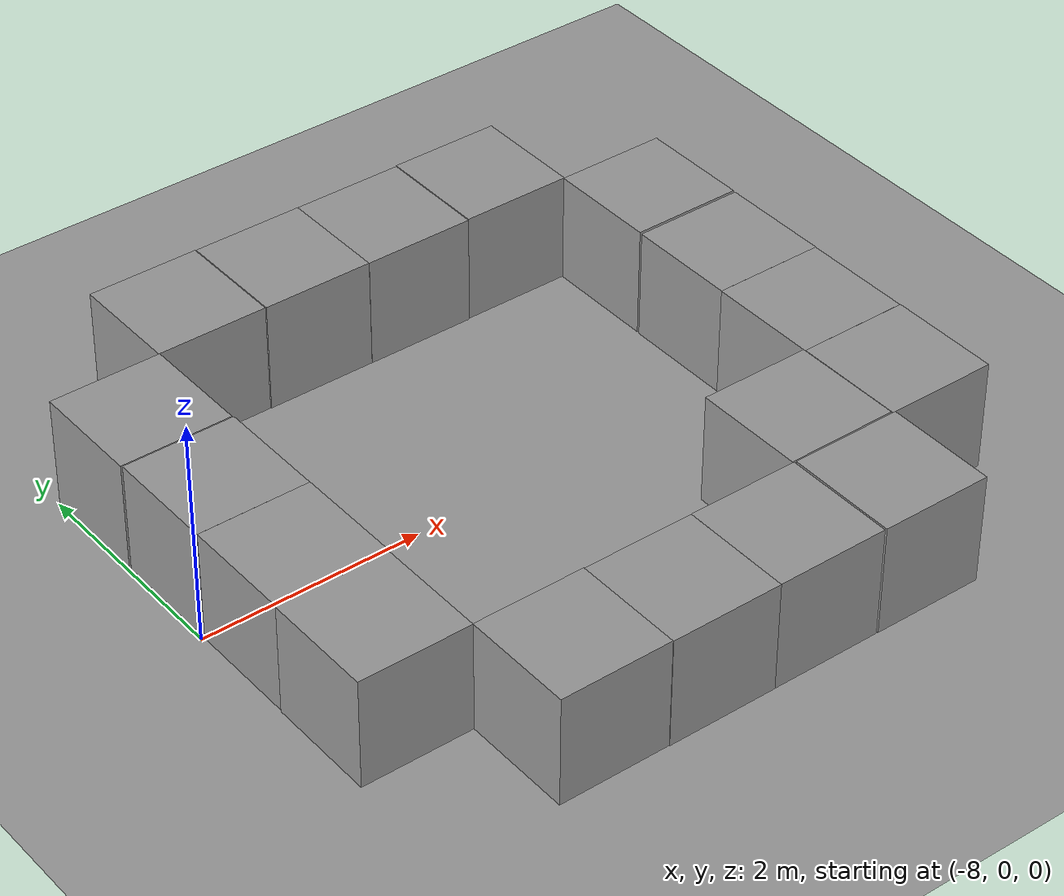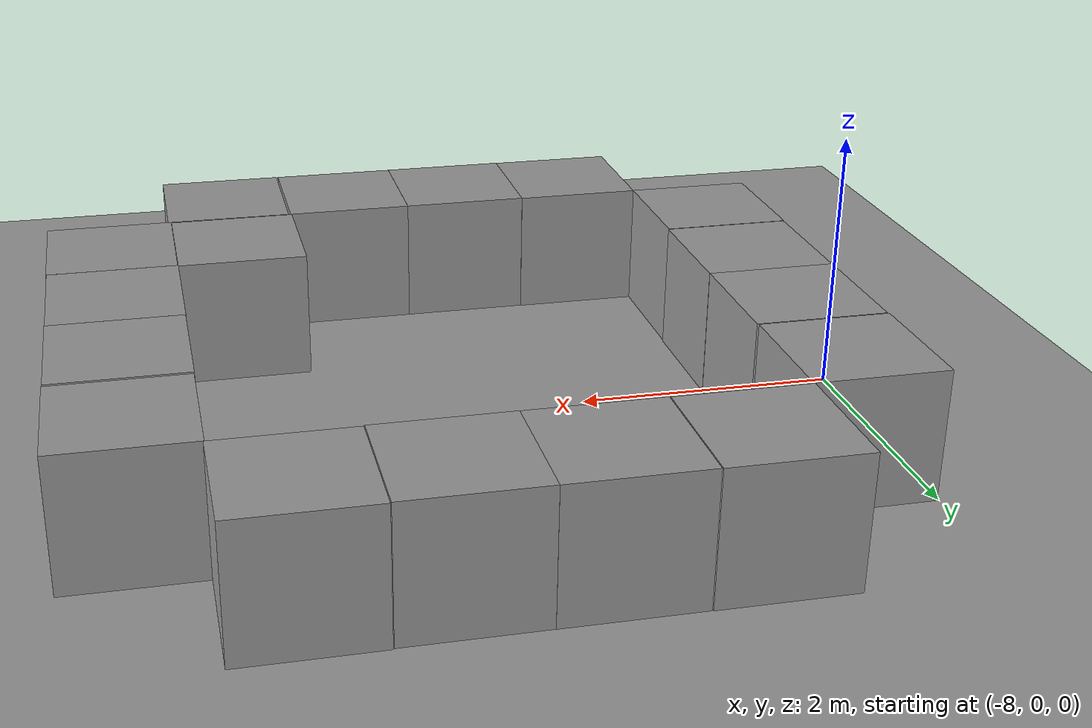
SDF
<sdf version="1.4">
 <world name="default">
  <light name="sun" type="directional">
   <pose>0 0 10 0 -0 0</pose>
   <diffuse>0.8 0.8 0.8 1</diffuse>
   <specular>0.2 0.2 0.2 1</specular>
   <attenuation>
    <range>1000</range>
    <constant>0.9</constant>
    <linear>0.01</linear>
    <quadratic>0.001</quadratic>
   </attenuation>
   <direction>0.5 0.1 -0.9</direction>
  </light>
  <scene><ambient>0.4 0.4 0.4 1</ambient><background>0.7 0.7 0.7 1</background><shadows>1</shadows></scene>
  <physics type="ode">
   <max_step_size>0.01</max_step_size>
   <real_time_factor>1</real_time_factor>
   <real_time_update_rate>100</real_time_update_rate>
   <gravity>0 0 -9.8</gravity>
  </physics>
  <model name="ground_plane_0">
   <static>1</static>
   <link name="link">
    <collision name="collision">
     <geometry><plane><normal>0 0 1</normal><size>100 100</size></plane></geometry>
     <surface><friction><ode><mu>100</mu><mu2>50</mu2></ode></friction></surface>
    </collision>
    <visual name="visual">
     <cast_shadows>0</cast_shadows>
     <geometry><plane><normal>0 0 1</normal><size>100 100</size></plane></geometry>
     <material>
      <script><uri>file://media/materials/scripts/gazebo.material</uri><name>Gazebo/Grey</name></script>
     </material>
    </visual>
    <velocity_decay><linear>0</linear><angular>0</angular></velocity_decay>
   </link>
   <pose>0.497681 0 0 0 -0 0</pose>
  </model>
  <spherical_coordinates>
   <surface_model>EARTH_WGS84</surface_model>
   <latitude_deg>0</latitude_deg>
   <longitude_deg>0</longitude_deg>
   <elevation>0</elevation>
   <heading_deg>0</heading_deg>
  </spherical_coordinates>
  <model name="unit_box_1_0">
   <pose>-7.48391 -1.51077 0.5 0 -0 -0.001786</pose>
   <link name="link">
    <inertial>
     <mass>1</mass>
     <inertia><ixx>1</ixx><ixy>0</ixy><ixz>0</ixz><iyy>1</iyy><iyz>0</iyz><izz>1</izz></inertia>
    </inertial>
    <collision name="collision"><geometry><box><size>1 1 1</size></box></geometry></collision>
    <visual name="visual">
     <geometry><box><size>1 1 1</size></box></geometry>
     <material>
      <script><uri>file://media/materials/scripts/gazebo.material</uri><name>Gazebo/Grey</name></script>
     </material>
    </visual>
    <velocity_decay><linear>0</linear><angular>0</angular></velocity_decay>
   </link>
   <static>0</static>
  </model>
  <model name="unit_box_2">
   <pose>-7.47525 -0.502775 0.5 0 0 -4e-06</pose>
   <link name="link">
    <inertial>
     <mass>1</mass>
     <inertia><ixx>1</ixx><ixy>0</ixy><ixz>0</ixz><iyy>1</iyy><iyz>0</iyz><izz>1</izz></inertia>
    </inertial>
    <collision name="collision"><geometry><box><size>1 1 1</size></box></geometry></collision>
    <visual name="visual">
     <geometry><box><size>1 1 1</size></box></geometry>
     <material>
      <script><uri>file://media/materials/scripts/gazebo.material</uri><name>Gazebo/Grey</name></script>
     </material>
    </visual>
    <velocity_decay><linear>0</linear><angular>0</angular></velocity_decay>
   </link>
   <static>0</static>
  </model>
  <model name="unit_box_3_0">
   <pose>-7.47724 0.497313 0.5 -0 -0 -0.00017</pose>
   <link name="link">
    <inertial>
     <mass>1</mass>
     <inertia><ixx>1</ixx><ixy>0</ixy><ixz>0</ixz><iyy>1</iyy><iyz>0</iyz><izz>1</izz></inertia>
    </inertial>
    <collision name="collision"><geometry><box><size>1 1 1</size></box></geometry></collision>
    <visual name="visual">
     <geometry><box><size>1 1 1</size></box></geometry>
     <material>
      <script><uri>file://media/materials/scripts/gazebo.material</uri><name>Gazebo/Grey</name></script>
     </material>
    </visual>
    <velocity_decay><linear>0</linear><angular>0</angular></velocity_decay>
   </link>
   <static>0</static>
  </model>
  <model name="unit_box_4">
   <pose>-7.48711 1.50851 0.5 0 -0 0</pose>
   <link name="link">
    <inertial>
     <mass>1</mass>
     <inertia><ixx>1</ixx><ixy>0</ixy><ixz>0</ixz><iyy>1</iyy><iyz>0</iyz><izz>1</izz></inertia>
    </inertial>
    <collision name="collision"><geometry><box><size>1 1 1</size></box></geometry></collision>
    <visual name="visual">
     <geometry><box><size>1 1 1</size></box></geometry>
     <material>
      <script><uri>file://media/materials/scripts/gazebo.material</uri><name>Gazebo/Grey</name></script>
     </material>
    </visual>
    <velocity_decay><linear>0</linear><angular>0</angular></velocity_decay>
   </link>
   <static>0</static>
  </model>
  <model name="unit_box_5">
   <pose>-6.49485 2.5096 0.5 0 -0 0</pose>
   <link name="link">
    <inertial>
     <mass>1</mass>
     <inertia><ixx>1</ixx><ixy>0</ixy><ixz>0</ixz><iyy>1</iyy><iyz>0</iyz><izz>1</izz></inertia>
    </inertial>
    <collision name="collision"><geometry><box><size>1 1 1</size></box></geometry></collision>
    <visual name="visual">
     <geometry><box><size>1 1 1</size></box></geometry>
     <material>
      <script><uri>file://media/materials/scripts/gazebo.material</uri><name>Gazebo/Grey</name></script>
     </material>
    </visual>
    <velocity_decay><linear>0</linear><angular>0</angular></velocity_decay>
   </link>
   <static>0</static>
  </model>
  <model name="unit_box_6">
   <pose>-5.48835 2.50554 0.5 0 -0 0</pose>
   <link name="link">
    <inertial>
     <mass>1</mass>
     <inertia><ixx>1</ixx><ixy>0</ixy><ixz>0</ixz><iyy>1</iyy><iyz>0</iyz><izz>1</izz></inertia>
    </inertial>
    <collision name="collision"><geometry><box><size>1 1 1</size></box></geometry></collision>
    <visual name="visual">
     <geometry><box><size>1 1 1</size></box></geometry>
     <material>
      <script><uri>file://media/materials/scripts/gazebo.material</uri><name>Gazebo/Grey</name></script>
     </material>
    </visual>
    <velocity_decay><linear>0</linear><angular>0</angular></velocity_decay>
   </link>
   <static>0</static>
  </model>
  <model name="unit_box_7">
   <pose>-4.48835 2.50374 0.5 0 0 -1e-06</pose>
   <link name="link">
    <inertial>
     <mass>1</mass>
     <inertia><ixx>1</ixx><ixy>0</ixy><ixz>0</ixz><iyy>1</iyy><iyz>0</iyz><izz>1</izz></inertia>
    </inertial>
    <collision name="collision"><geometry><box><size>1 1 1</size></box></geometry></collision>
    <visual name="visual">
     <geometry><box><size>1 1 1</size></box></geometry>
     <material>
      <script><uri>file://media/materials/scripts/gazebo.material</uri><name>Gazebo/Grey</name></script>
     </material>
    </visual>
    <velocity_decay><linear>0</linear><angular>0</angular></velocity_decay>
   </link>
   <static>0</static>
  </model>
  <model name="unit_box_8_0">
   <pose>-3.48186 2.51329 0.5 0 -0 0</pose>
   <link name="link">
    <inertial>
     <mass>1</mass>
     <inertia><ixx>1</ixx><ixy>0</ixy><ixz>0</ixz><iyy>1</iyy><iyz>0</iyz><izz>1</izz></inertia>
    </inertial>
    <collision name="collision"><geometry><box><size>1 1 1</size></box></geometry></collision>
    <visual name="visual">
     <geometry><box><size>1 1 1</size></box></geometry>
     <material>
      <script><uri>file://media/materials/scripts/gazebo.material</uri><name>Gazebo/Grey</name></script>
     </material>
    </visual>
    <velocity_decay><linear>0</linear><angular>0</angular></velocity_decay>
   </link>
   <static>0</static>
  </model>
  <model name="unit_box_9">
   <pose>-6.48463 -2.50565 0.5 0 -0 0.000312</pose>
   <link name="link">
    <inertial>
     <mass>1</mass>
     <inertia><ixx>1</ixx><ixy>0</ixy><ixz>0</ixz><iyy>1</iyy><iyz>0</iyz><izz>1</izz></inertia>
    </inertial>
    <collision name="collision"><geometry><box><size>1 1 1</size></box></geometry></collision>
    <visual name="visual">
     <geometry><box><size>1 1 1</size></box></geometry>
     <material>
      <script><uri>file://media/materials/scripts/gazebo.material</uri><name>Gazebo/Grey</name></script>
     </material>
    </visual>
    <velocity_decay><linear>0</linear><angular>0</angular></velocity_decay>
   </link>
   <static>0</static>
  </model>
  <model name="unit_box_10">
   <pose>-5.48463 -2.51095 0.5 0 -0 0.000312</pose>
   <link name="link">
    <inertial>
     <mass>1</mass>
     <inertia><ixx>1</ixx><ixy>0</ixy><ixz>0</ixz><iyy>1</iyy><iyz>0</iyz><izz>1</izz></inertia>
    </inertial>
    <collision name="collision"><geometry><box><size>1 1 1</size></box></geometry></collision>
    <visual name="visual">
     <geometry><box><size>1 1 1</size></box></geometry>
     <material>
      <script><uri>file://media/materials/scripts/gazebo.material</uri><name>Gazebo/Grey</name></script>
     </material>
    </visual>
    <velocity_decay><linear>0</linear><angular>0</angular></velocity_decay>
   </link>
   <static>0</static>
  </model>
  <model name="unit_box_11">
   <pose>-4.48442 -2.50963 0.5 0 -0 0.000466</pose>
   <link name="link">
    <inertial>
     <mass>1</mass>
     <inertia><ixx>1</ixx><ixy>0</ixy><ixz>0</ixz><iyy>1</iyy><iyz>0</iyz><izz>1</izz></inertia>
    </inertial>
    <collision name="collision"><geometry><box><size>1 1 1</size></box></geometry></collision>
    <visual name="visual">
     <geometry><box><size>1 1 1</size></box></geometry>
     <material>
      <script><uri>file://media/materials/scripts/gazebo.material</uri><name>Gazebo/Grey</name></script>
     </material>
    </visual>
    <velocity_decay><linear>0</linear><angular>0</angular></velocity_decay>
   </link>
   <static>0</static>
  </model>
  <model name="unit_box_12">
   <pose>-3.46815 -2.51398 0.5 0 -0 -0.003011</pose>
   <link name="link">
    <inertial>
     <mass>1</mass>
     <inertia><ixx>1</ixx><ixy>0</ixy><ixz>0</ixz><iyy>1</iyy><iyz>0</iyz><izz>1</izz></inertia>
    </inertial>
    <collision name="collision"><geometry><box><size>1 1 1</size></box></geometry></collision>
    <visual name="visual">
     <geometry><box><size>1 1 1</size></box></geometry>
     <material>
      <script><uri>file://media/materials/scripts/gazebo.material</uri><name>Gazebo/Grey</name></script>
     </material>
    </visual>
    <velocity_decay><linear>0</linear><angular>0</angular></velocity_decay>
   </link>
   <static>0</static>
  </model>
  <model name="unit_box_13">
   <pose>-2.49088 -1.51537 0.5 0 -0 -8e-05</pose>
   <link name="link">
    <inertial>
     <mass>1</mass>
     <inertia><ixx>1</ixx><ixy>0</ixy><ixz>0</ixz><iyy>1</iyy><iyz>0</iyz><izz>1</izz></inertia>
    </inertial>
    <collision name="collision"><geometry><box><size>1 1 1</size></box></geometry></collision>
    <visual name="visual">
     <geometry><box><size>1 1 1</size></box></geometry>
     <material>
      <script><uri>file://media/materials/scripts/gazebo.material</uri><name>Gazebo/Grey</name></script>
     </material>
    </visual>
    <velocity_decay><linear>0</linear><angular>0</angular></velocity_decay>
   </link>
   <static>0</static>
  </model>
  <model name="unit_box_14">
   <pose>-2.49618 -0.514424 0.5 0 -0 0.001432</pose>
   <link name="link">
    <inertial>
     <mass>1</mass>
     <inertia><ixx>1</ixx><ixy>0</ixy><ixz>0</ixz><iyy>1</iyy><iyz>0</iyz><izz>1</izz></inertia>
    </inertial>
    <collision name="collision"><geometry><box><size>1 1 1</size></box></geometry></collision>
    <visual name="visual">
     <geometry><box><size>1 1 1</size></box></geometry>
     <material>
      <script><uri>file://media/materials/scripts/gazebo.material</uri><name>Gazebo/Grey</name></script>
     </material>
    </visual>
    <velocity_decay><linear>0</linear><angular>0</angular></velocity_decay>
   </link>
   <static>0</static>
  </model>
  <model name="unit_box_15">
   <pose>-2.49429 0.485901 0.5 0 -0 0.000857</pose>
   <link name="link">
    <inertial>
     <mass>1</mass>
     <inertia><ixx>1</ixx><ixy>0</ixy><ixz>0</ixz><iyy>1</iyy><iyz>0</iyz><izz>1</izz></inertia>
    </inertial>
    <collision name="collision"><geometry><box><size>1 1 1</size></box></geometry></collision>
    <visual name="visual">
     <geometry><box><size>1 1 1</size></box></geometry>
     <material>
      <script><uri>file://media/materials/scripts/gazebo.material</uri><name>Gazebo/Grey</name></script>
     </material>
    </visual>
    <velocity_decay><linear>0</linear><angular>0</angular></velocity_decay>
   </link>
   <static>0</static>
  </model>
  <model name="unit_box_16">
   <pose>-2.49059 1.5115 0.5 0 -0 0</pose>
   <link name="link">
    <inertial>
     <mass>1</mass>
     <inertia><ixx>1</ixx><ixy>0</ixy><ixz>0</ixz><iyy>1</iyy><iyz>0</iyz><izz>1</izz></inertia>
    </inertial>
    <collision name="collision"><geometry><box><size>1 1 1</size></box></geometry></collision>
    <visual name="visual">
     <geometry><box><size>1 1 1</size></box></geometry>
     <material>
      <script><uri>file://media/materials/scripts/gazebo.material</uri><name>Gazebo/Grey</name></script>
     </material>
    </visual>
    <velocity_decay><linear>0</linear><angular>0</angular></velocity_decay>
   </link>
   <static>0</static>
  </model>
  <model name="unit_box_1">
   <pose>-3.49427 -1.50008 0.5 0 -0 0.00253</pose>
   <link name="link">
    <inertial>
     <mass>1</mass>
     <inertia><ixx>1</ixx><ixy>0</ixy><ixz>0</ixz><iyy>1</iyy><iyz>0</iyz><izz>1</izz></inertia>
    </inertial>
    <collision name="collision"><geometry><box><size>1 1 1</size></box></geometry></collision>
    <visual name="visual">
     <geometry><box><size>1 1 1</size></box></geometry>
     <material>
      <script><uri>file://media/materials/scripts/gazebo.material</uri><name>Gazebo/Grey</name></script>
     </material>
    </visual>
    <velocity_decay><linear>0</linear><angular>0</angular></velocity_decay>
   </link>
   <static>0</static>
  </model>
 </world>
</sdf>
